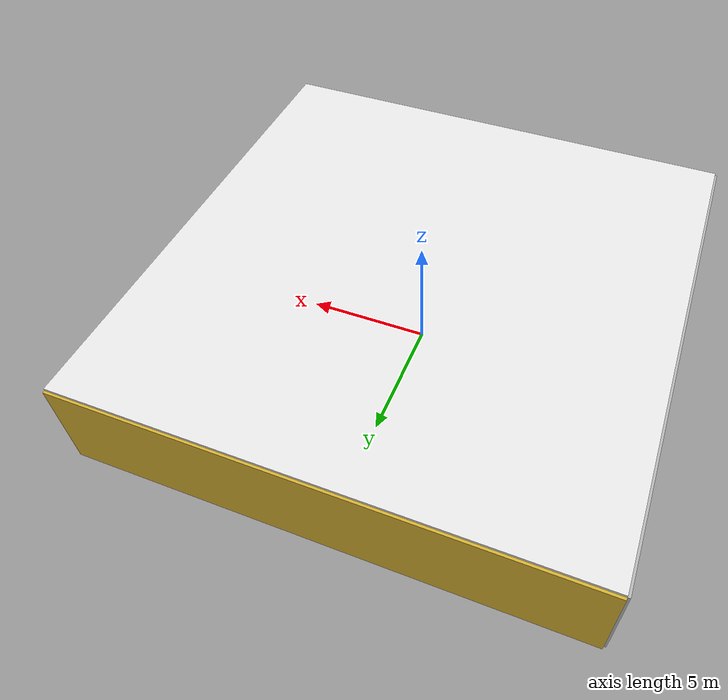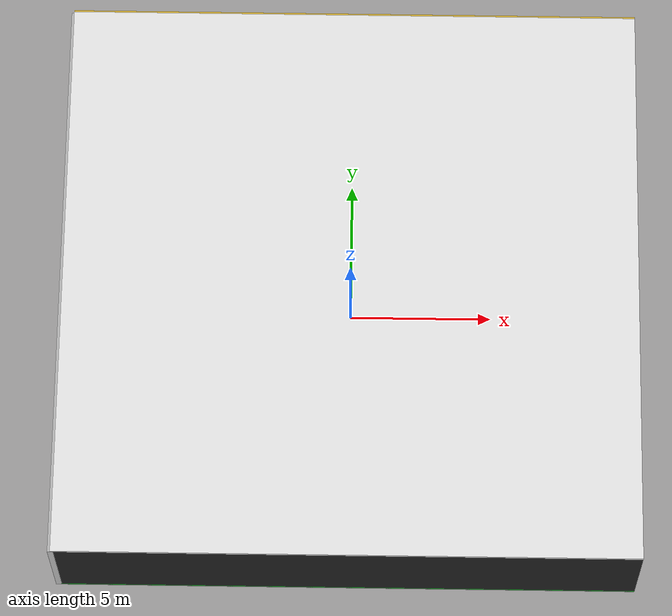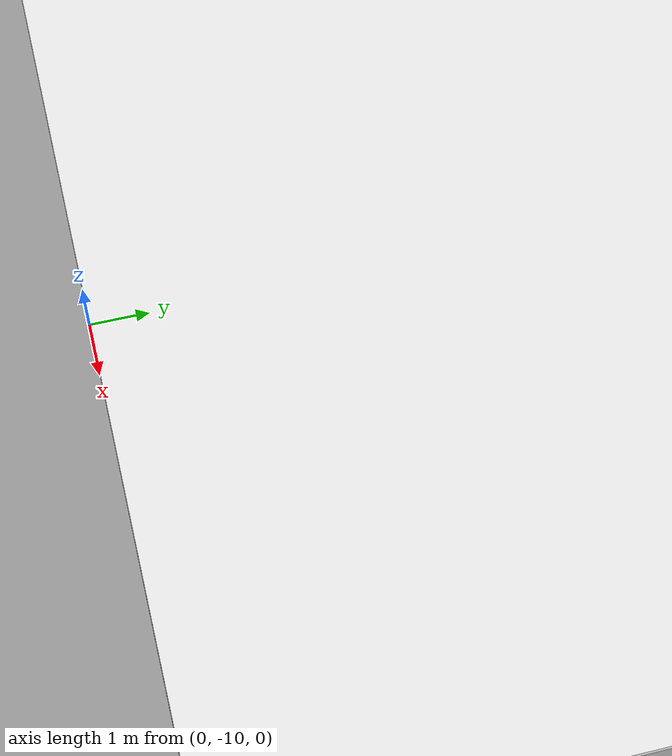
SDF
<sdf version="1.4">
 <world name="default">
  <physics type="ode">
   <max_step_size>0.001</max_step_size>
   <real_time_factor>1</real_time_factor>
   <real_time_update_rate>1000</real_time_update_rate>
   <gravity>0 0 -9.8</gravity>
  </physics>
  <scene><ambient>0.4 0.4 0.4 1</ambient><background>0.7 0.7 0.7 1</background><shadows>1</shadows></scene>
  <model name="Surrounding">
   <static>1</static>
   <link name="Ceiling">
    <collision name="Ceiling_Collision"><geometry><box><size>20 20 0.1</size></box></geometry></collision>
    <visual name="Ceiling_Visual">
     <geometry><box><size>20 20 0.1</size></box></geometry>
     <material>
      <script><uri>file://media/materials/scripts/gazebo.material</uri><name>Gazebo/White</name></script>
     </material>
    </visual>
    <pose>0 0 4.05 0 0 0</pose>
   </link>
   <link name="Wall_South">
    <collision name="Wall_South_Collision">
     <geometry><box><size>20 0 4</size></box></geometry>
     <pose>0 0 2 0 -0 0</pose>
    </collision>
    <visual name="Wall_South_Visual">
     <pose>0 0 2 0 -0 0</pose>
     <geometry><box><size>20 0 4</size></box></geometry>
     <material>
      <script><uri>file://media/materials/scripts/gazebo.material</uri><name>Gazebo/FlatBlack</name></script>
     </material>
    </visual>
    <velocity_decay><linear>0</linear><angular>0</angular></velocity_decay>
    <pose>0 -10 0 0 -0 0</pose>
   </link>
   <link name="Wall_East">
    <collision name="Wall_21_Collision">
     <geometry><box><size>20 0 4</size></box></geometry>
     <pose>0 0 2 0 -0 0</pose>
    </collision>
    <visual name="Wall_21_Visual">
     <pose>0 0 2 0 -0 0</pose>
     <geometry><box><size>20 0 4</size></box></geometry>
     <material>
      <script><uri>file://media/materials/scripts/gazebo.material</uri><name>Gazebo/PioneerBody</name></script>
     </material>
    </visual>
    <velocity_decay><linear>0</linear><angular>0</angular></velocity_decay>
    <pose>10 0 0 0 -0 1.5708</pose>
   </link>
   <link name="Wall_North">
    <collision name="Wall_22_Collision">
     <geometry><box><size>20 0.2 4</size></box></geometry>
     <pose>0 0 2 0 -0 0</pose>
    </collision>
    <visual name="Wall_22_Visual">
     <pose>0 0 2 0 -0 0</pose>
     <geometry><box><size>20 0.2 4</size></box></geometry>
     <material>
      <script><uri>file://media/materials/scripts/gazebo.material</uri><name>Gazebo/Gold</name></script>
     </material>
    </visual>
    <velocity_decay><linear>0</linear><angular>0</angular></velocity_decay>
    <pose>0 10 0 0 -0 0</pose>
   </link>
   <link name="Wall_West">
    <collision name="Wall_23_Collision">
     <geometry><box><size>20 0.2 4</size></box></geometry>
     <pose>0 0 2 0 -0 0</pose>
    </collision>
    <visual name="Wall_23_Visual">
     <pose>0 0 2 0 -0 0</pose>
     <geometry><box><size>20 0.2 4</size></box></geometry>
     <material>
      <script><uri>file://media/materials/scripts/gazebo.material</uri><name>Gazebo/LightOn</name></script>
     </material>
    </visual>
    <velocity_decay><linear>0</linear><angular>0</angular></velocity_decay>
    <pose>-10 0 0 0 0 -1.5708</pose>
   </link>
   <link name="Ground_link">
    <collision name="collision">
     <pose>0 0 .05 0 -0 0</pose>
     <geometry><box><size>20 20 0.1</size></box></geometry>
    </collision>
    <visual name="visual">
     <pose>0 0 .05 0 -0 0</pose>
     <geometry><box><size>20 20 0.1</size></box></geometry>
     <material>
      <script><uri>file://media/materials/scripts/gazebo.material</uri><name>Gazebo/GreenGlow</name></script>
     </material>
    </visual>
   </link>
   <static>1</static>
  </model>
  <spherical_coordinates>
   <surface_model>EARTH_WGS84</surface_model>
   <latitude_deg>0</latitude_deg>
   <longitude_deg>0</longitude_deg>
   <elevation>0</elevation>
   <heading_deg>0</heading_deg>
  </spherical_coordinates>
  <light name="lightball_0" type="diffuse">
   <diffuse>0.8 0.8 0.8 1</diffuse>
   <specular>0.2 0.2 0.2 1</specular>
   <attenuation>
    <range>100</range>
    <constant>0.7</constant>
    <linear>0.01</linear>
    <quadratic>0.001</quadratic>
   </attenuation>
   <direction>-0.5 0.1 -0.9</direction>
   <pose>6.93713774099 -2.92310310165 1.42432142524 0 0 0</pose>
  </light>
  <light name="lightball_1" type="diffuse">
   <diffuse>0.8 0.8 0.8 1</diffuse>
   <specular>0.2 0.2 0.2 1</specular>
   <attenuation>
    <range>100</range>
    <constant>0.7</constant>
    <linear>0.01</linear>
    <quadratic>0.001</quadratic>
   </attenuation>
   <direction>-0.5 0.1 -0.9</direction>
   <pose>-4.14639963878 -8.95919286283 2.47733915065 0 0 0</pose>
  </light>
  <light name="lightball_2" type="diffuse">
   <diffuse>0.8 0.8 0.8 1</diffuse>
   <specular>0.2 0.2 0.2 1</specular>
   <attenuation>
    <range>100</range>
    <constant>0.7</constant>
    <linear>0.01</linear>
    <quadratic>0.001</quadratic>
   </attenuation>
   <direction>-0.5 0.1 -0.9</direction>
   <pose>-4.35320800478 5.13961740501 1.1665020002 0 0 0</pose>
  </light>
  <light name="lightball_3" type="diffuse">
   <diffuse>0.8 0.8 0.8 1</diffuse>
   <specular>0.2 0.2 0.2 1</specular>
   <attenuation>
    <range>100</range>
    <constant>0.7</constant>
    <linear>0.01</linear>
    <quadratic>0.001</quadratic>
   </attenuation>
   <direction>-0.5 0.1 -0.9</direction>
   <pose>6.91469475467 -9.71988921965 0.668382478126 0 0 0</pose>
  </light>
  <light name="lightball_4" type="diffuse">
   <diffuse>0.8 0.8 0.8 1</diffuse>
   <specular>0.2 0.2 0.2 1</specular>
   <attenuation>
    <range>100</range>
    <constant>0.7</constant>
    <linear>0.01</linear>
    <quadratic>0.001</quadratic>
   </attenuation>
   <direction>-0.5 0.1 -0.9</direction>
   <pose>-4.84986131477 -0.95874085793 3.20703356859 0 0 0</pose>
  </light>
  <light name="lightball_5" type="diffuse">
   <diffuse>0.8 0.8 0.8 1</diffuse>
   <specular>0.2 0.2 0.2 1</specular>
   <attenuation>
    <range>100</range>
    <constant>0.7</constant>
    <linear>0.01</linear>
    <quadratic>0.001</quadratic>
   </attenuation>
   <direction>-0.5 0.1 -0.9</direction>
   <pose>-3.99028662332 -2.45471700898 1.30445103543 0 0 0</pose>
  </light>
  <light name="lightball_6" type="diffuse">
   <diffuse>0.8 0.8 0.8 1</diffuse>
   <specular>0.2 0.2 0.2 1</specular>
   <attenuation>
    <range>100</range>
    <constant>0.7</constant>
    <linear>0.01</linear>
    <quadratic>0.001</quadratic>
   </attenuation>
   <direction>-0.5 0.1 -0.9</direction>
   <pose>-3.33858217087 9.37364745273 2.07841493323 0 0 0</pose>
  </light>
  <light name="lightball_7" type="diffuse">
   <diffuse>0.8 0.8 0.8 1</diffuse>
   <specular>0.2 0.2 0.2 1</specular>
   <attenuation>
    <range>100</range>
    <constant>0.7</constant>
    <linear>0.01</linear>
    <quadratic>0.001</quadratic>
   </attenuation>
   <direction>-0.5 0.1 -0.9</direction>
   <pose>0.478965905855 -3.93620249602 2.95851576294 0 0 0</pose>
  </light>
  <light name="lightball_8" type="diffuse">
   <diffuse>0.8 0.8 0.8 1</diffuse>
   <specular>0.2 0.2 0.2 1</specular>
   <attenuation>
    <range>100</range>
    <constant>0.7</constant>
    <linear>0.01</linear>
    <quadratic>0.001</quadratic>
   </attenuation>
   <direction>-0.5 0.1 -0.9</direction>
   <pose>-4.00829998848 -3.51077323315 0.768834821805 0 0 0</pose>
  </light>
  <light name="lightball_9" type="diffuse">
   <diffuse>0.8 0.8 0.8 1</diffuse>
   <specular>0.2 0.2 0.2 1</specular>
   <attenuation>
    <range>100</range>
    <constant>0.7</constant>
    <linear>0.01</linear>
    <quadratic>0.001</quadratic>
   </attenuation>
   <direction>-0.5 0.1 -0.9</direction>
   <pose>-8.24573985573 7.55505932117 2.36967069373 0 0 0</pose>
  </light>
  <include><uri>model://cabinet</uri><pose>-4.32996382319 -4.67745365724 0 0 0 0.953042011217</pose></include>
  <include><uri>model://cabinet</uri><pose>-2.03911074431 -5.18293701643 0 0 0 1.93102141374</pose></include>
  <include><uri>model://cabinet</uri><pose>-1.96553877666 6.84716530179 0 0 0 2.59957512292</pose></include>
  <include>
   <uri>model://robocup_3Dsim_goal</uri>
   <pose>2.03679228014 -8.21417665394 0 0 0 1.22024767393</pose>
  </include>
  <include><uri>model://table</uri><pose>4.68929488115 1.42337311926 0 0 0 1.49214464587</pose></include>
 </world>
</sdf>

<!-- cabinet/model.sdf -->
<sdf version="1.5">
  <model name="cabinet">
    <static>true</static>
    <link name="cabinet_bottom_plate">
      <inertial>
        <pose>0 0 -1 0 0 0</pose>
        <inertia>
          <ixx>2.050000</ixx>
          <ixy>0</ixy>
          <ixz>0</ixz>
          <iyy>2.050000</iyy>
          <iyz>0</iyz>
          <izz>2.050000</izz>
        </inertia>
        <mass>25.000000</mass>
      </inertial>
      <collision name="cabinet_bottom_plate_geom">
        <pose>0 0 0.010000 0 0 0</pose>
        <geometry>
          <box>
            <size>0.450000 0.450000 0.020000</size>
          </box>
        </geometry>
      </collision>
      <visual name="cabinet_bottom_plate_geom_visual">
        <pose>0 0 0.010000 0 0 0</pose>
        <geometry>
          <box>
            <size>0.450000 0.450000 0.020000</size>
          </box>
        </geometry>
        <material>
          <script>
            <uri>model://media/materials/scripts/gazebo.material</uri>
            <name>Gazebo/Wood</name>
          </script>
        </material>
      </visual>
      <collision name="cabinet_bottom_plate_geom_cabinet_back_plate">
        <pose>0.235000 0 0.510000 0 0 0</pose>
        <geometry>
          <box>
            <size>0.020000 0.450000 1.020000</size>
          </box>
        </geometry>
      </collision>
      <visual name="cabinet_bottom_plate_geom_cabinet_back_plate_visual">
        <pose>0.235000 0 0.510000 0 0 0</pose>
        <geometry>
          <box>
            <size>0.020000 0.450000 1.020000</size>
          </box>
        </geometry>
        <material>
          <script>
            <uri>model://media/materials/scripts/gazebo.material</uri>
            <name>Gazebo/Wood</name>
          </script>
        </material>
      </visual>
      <collision name="cabinet_bottom_plate_geom_cabinet_left_plate">
        <pose>0 0.235000 0.510000 0 0 0</pose>
        <geometry>
          <box>
            <size>0.450000 0.020000 1.020000</size>
          </box>
        </geometry>
      </collision>
      <visual name="cabinet_bottom_plate_geom_cabinet_left_plate_visual">
        <pose>0 0.235000 0.510000 0 0 0</pose>
        <geometry>
          <box>
            <size>0.450000 0.020000 1.020000</size>
          </box>
        </geometry>
        <material>
          <script>
            <uri>model://media/materials/scripts/gazebo.material</uri>
            <name>Gazebo/Wood</name>
          </script>
        </material>
      </visual>
      <collision name="cabinet_bottom_plate_geom_cabinet_middle_plate">
        <pose>0 0 0.510000 0 0 0</pose>
        <geometry>
          <box>
            <size>0.450000 0.450000 0.020000</size>
          </box>
        </geometry>
      </collision>
      <visual name="cabinet_bottom_plate_geom_cabinet_middle_plate_visual">
        <pose>0 0 0.510000 0 0 0</pose>
        <geometry>
          <box>
            <size>0.450000 0.450000 0.020000</size>
          </box>
        </geometry>
        <material>
          <script>
            <uri>model://media/materials/scripts/gazebo.material</uri>
            <name>Gazebo/Wood</name>
          </script>
        </material>
      </visual>
      <collision name="cabinet_bottom_plate_geom_cabinet_right_plate">
        <pose>0 -0.235000 0.510000 0 0 0</pose>
        <geometry>
          <box>
            <size>0.450000 0.020000 1.020000</size>
          </box>
        </geometry>
      </collision>
      <visual name="cabinet_bottom_plate_geom_cabinet_right_plate_visual">
        <pose>0 -0.235000 0.510000 0 0 0</pose>
        <geometry>
          <box>
            <size>0.450000 0.020000 1.020000</size>
          </box>
        </geometry>
        <material>
          <script>
            <uri>model://media/materials/scripts/gazebo.material</uri>
            <name>Gazebo/Wood</name>
          </script>
        </material>
      </visual>
      <collision name="cabinet_bottom_plate_geom_cabinet_top_plate">
        <pose>0 0 1.010000 0 0 0</pose>
        <geometry>
          <box>
            <size>0.450000 0.450000 0.020000</size>
          </box>
        </geometry>
      </collision>
      <visual name="cabinet_bottom_plate_geom_cabinet_top_plate_visual">
        <pose>0 0 1.010000 0 0 0</pose>
        <geometry>
          <box>
            <size>0.450000 0.450000 0.020000</size>
          </box>
        </geometry>
        <material>
          <script>
            <uri>model://media/materials/scripts/gazebo.material</uri>
            <name>Gazebo/Wood</name>
          </script>
        </material>
      </visual>
    </link>
  </model>
</sdf>

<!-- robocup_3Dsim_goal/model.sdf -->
<sdf version="1.5">
  <model name="robocup_3d_goal">
    <static>true</static>
    <link name="left_post">
      <pose>0 1.05 0.45 0 0 0</pose>
      <collision name="collision">
        <geometry>
          <cylinder>
            <radius>0.05</radius>
            <length>0.9</length>
          </cylinder>
        </geometry>
      </collision>
      <visual name="visual">
        <geometry>
          <cylinder>
            <radius>0.05</radius>
            <length>0.9</length>
          </cylinder>
        </geometry>
        <material>
          <script>
            <uri>file://media/materials/scripts/gazebo.material</uri>
            <name>Gazebo/ZincYellow</name>
          </script>
        </material>
      </visual>
    </link>
    <link name="left_support_horiz_lower">
      <pose>0.30 1.05 0.01 0 0 0</pose>
      <collision name="collision">
        <geometry>
          <box>
            <size>0.50 0.02 0.02</size>
          </box>
        </geometry>
      </collision>
      <visual name="visual">
        <geometry>
          <box>
            <size>0.50 0.02 0.02</size>
          </box>
        </geometry>
        <material>
          <script>
            <uri>file://media/materials/scripts/gazebo.material</uri>
            <name>Gazebo/White</name>
          </script>
        </material>
      </visual>
    </link>
    <link name="left_support_horiz_upper">
      <pose>0.30 1.05 0.79 0 0 0</pose>
      <collision name="collision">
        <geometry>
          <box>
            <size>0.50 0.02 0.02</size>
          </box>
        </geometry>
      </collision>
      <visual name="visual">
        <geometry>
          <box>
            <size>0.50 0.02 0.02</size>
          </box>
        </geometry>
        <material>
          <script>
            <uri>file://media/materials/scripts/gazebo.material</uri>
            <name>Gazebo/White</name>
          </script>
        </material>
      </visual>
    </link>
    <link name="left_support_vertical">
      <pose>0.56 1.05 0.4 0 1.5708 0</pose>
      <collision name="collision">
        <geometry>
          <box>
            <size>0.80 0.02 0.02</size>
          </box>
        </geometry>
      </collision>
      <visual name="visual">
        <geometry>
          <box>
            <size>0.80 0.02 0.02</size>
          </box>
        </geometry>
        <material>
          <script>
            <uri>file://media/materials/scripts/gazebo.material</uri>
            <name>Gazebo/White</name>
          </script>
        </material>
      </visual>
    </link>
    <link name="right_support_horiz_lower">
      <pose>0.30 -1.05 0.01 0 0 0</pose>
      <collision name="collision">
        <geometry>
          <box>
            <size>0.50 0.02 0.02</size>
          </box>
        </geometry>
      </collision>
      <visual name="visual">
        <geometry>
          <box>
            <size>0.50 0.02 0.02</size>
          </box>
        </geometry>
        <material>
          <script>
            <uri>file://media/materials/scripts/gazebo.material</uri>
            <name>Gazebo/White</name>
          </script>
        </material>
      </visual>
    </link>
    <link name="right_support_horiz_upper">
      <pose>0.30 -1.05 0.79 0 0 0</pose>
      <collision name="collision">
        <geometry>
          <box>
            <size>0.50 0.02 0.02</size>
          </box>
        </geometry>
      </collision>
      <visual name="visual">
        <geometry>
          <box>
            <size>0.50 0.02 0.02</size>
          </box>
        </geometry>
        <material>
          <script>
            <uri>file://media/materials/scripts/gazebo.material</uri>
            <name>Gazebo/White</name>
          </script>
        </material>
      </visual>
    </link>
    <link name="right_support_vertical">
      <pose>0.56 -1.05 0.4 0 1.5708 0</pose>
      <collision name="collision">
        <geometry>
          <box>
            <size>0.80 0.02 0.02</size>
          </box>
        </geometry>
      </collision>
      <visual name="visual">
        <geometry>
          <box>
            <size>0.80 0.02 0.02</size>
          </box>
        </geometry>
        <material>
          <script>
            <uri>file://media/materials/scripts/gazebo.material</uri>
            <name>Gazebo/White</name>
          </script>
        </material>
      </visual>
    </link>
    <link name="center_support_horiz_lower">
      <pose>0.56 0 0.01 0 1.5708 0</pose>
      <collision name="collision">
        <geometry>
          <box>
            <size>0.02 2.08 0.02</size>
          </box>
        </geometry>
      </collision>
      <visual name="visual">
        <geometry>
          <box>
            <size>0.02 2.08 0.02</size>
          </box>
        </geometry>
        <material>
          <script>
            <uri>file://media/materials/scripts/gazebo.material</uri>
            <name>Gazebo/White</name>
          </script>
        </material>
      </visual>
    </link>
    <link name="center_support_horiz_upper">
      <pose>0.56 0 0.79 0 1.5708 0</pose>
      <collision name="collision">
        <geometry>
          <box>
            <size>0.02 2.08 0.02</size>
          </box>
        </geometry>
      </collision>
      <visual name="visual">
        <geometry>
          <box>
            <size>0.02 2.08 0.02</size>
          </box>
        </geometry>
        <material>
          <script>
            <uri>file://media/materials/scripts/gazebo.material</uri>
            <name>Gazebo/White</name>
          </script>
        </material>
      </visual>
    </link>
    <link name="right_post">
      <pose>0 -1.05 0.45 0 0 0</pose>
      <collision name="collision">
        <geometry>
          <cylinder>
            <radius>0.05</radius>
            <length>0.9</length>
          </cylinder>
        </geometry>
      </collision>
      <visual name="visual">
        <geometry>
          <cylinder>
            <radius>0.05</radius>
            <length>0.9</length>
          </cylinder>
        </geometry>
        <material>
          <script>
            <uri>file://media/materials/scripts/gazebo.material</uri>
            <name>Gazebo/ZincYellow</name>
          </script>
        </material>
      </visual>
    </link>
    <link name="crossbar">
      <pose>0 0 0.85 1.57 1.57 0</pose>
      <collision name="collision">
        <geometry>
          <cylinder>
            <radius>0.05</radius>
            <length>2.0</length>
          </cylinder>
        </geometry>
      </collision>
      <visual name="visual">
        <geometry>
          <cylinder>
            <radius>0.05</radius>
            <length>2.0</length>
          </cylinder>
        </geometry>
        <material>
          <script>
            <uri>file://media/materials/scripts/gazebo.material</uri>
            <name>Gazebo/ZincYellow</name>
          </script>
        </material>
      </visual>
    </link>
    <link name="center_net">
      <pose>0.56 0 0.40 0 0 0</pose>
      <collision name="collision">
        <geometry>
          <box>
            <size>0.01 2.1 0.80</size>
          </box>
        </geometry>
      </collision>
      <visual name="visual">
        <geometry>
          <box>
            <size>0.01 2.1 0.80</size>
          </box>
        </geometry>
        <material>
          <script>
            <uri>model://../model_source/models/robocup09_spl_field/materials/scripts/</uri>
            <uri>model://../model_source/models/robocup09_spl_field/materials/textures/</uri>
            <name>RoboCup/Net</name>
          </script>
        </material>
      </visual>
    </link>
    <link name="left_net">
      <pose>0.30 1.05 0.40 0 0 0</pose>
      <collision name="collision">
        <geometry>
          <box>
            <size>0.50 0.01 0.76</size>
          </box>
        </geometry>
      </collision>
      <visual name="visual">
        <geometry>
          <box>
            <size>0.50 0.01 0.76</size>
          </box>
        </geometry>
        <material>
          <script>
            <uri>model://../model_source/models/robocup09_spl_field/materials/scripts/</uri>
            <uri>model://../model_source/models/robocup09_spl_field/materials/textures/</uri>
            <name>RoboCup/Net</name>
          </script>
        </material>
      </visual>
    </link>
    <link name="right_net">
      <pose>0.30 -1.05 0.40 0 0 0</pose>
      <collision name="collision">
        <geometry>
          <box>
            <size>0.50 0.01 0.76</size>
          </box>
        </geometry>
      </collision>
      <visual name="visual">
        <geometry>
          <box>
            <size>0.50 0.01 0.76</size>
          </box>
        </geometry>
        <material>
          <script>
            <uri>model://../model_source/models/robocup09_spl_field/materials/scripts/</uri>
            <uri>model://../model_source/models/robocup09_spl_field/materials/textures/</uri>
            <name>RoboCup/Net</name>
          </script>
        </material>
      </visual>
    </link>
  </model>
</sdf>

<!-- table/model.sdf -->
<sdf version="1.5">
  <model name="table">
    <static>true</static>
    <link name="link">
      <collision name="surface">
        <pose>0 0 1.0 0 0 0</pose>
        <geometry>
          <box>
            <size>1.5 0.8 0.03</size>
          </box>
        </geometry>
        <surface>
          <friction>
            <ode>
              <mu>0.6</mu>
              <mu2>0.6</mu2>
            </ode>
          </friction>
        </surface>
      </collision>
      <visual name="visual1">
        <pose>0 0 1.0 0 0 0</pose>
        <geometry>
          <box>
            <size>1.5 0.8 0.03</size>
          </box>
        </geometry>
        <material>
          <script>
            <uri>model://media/materials/scripts/gazebo.material</uri>
            <name>Gazebo/Wood</name>
          </script>
        </material>
      </visual>
      <collision name="front_left_leg">
        <pose>0.68 0.38 0.5 0 0 0</pose>
        <geometry>
          <cylinder>
            <radius>0.02</radius>
            <length>1.0</length>
          </cylinder>
        </geometry>
      </collision>
      <visual name="front_left_leg">
        <pose>0.68 0.38 0.5 0 0 0</pose>
        <geometry>
          <cylinder>
            <radius>0.02</radius>
            <length>1.0</length>
          </cylinder>
        </geometry>
        <material>
          <script>
            <uri>model://media/materials/scripts/gazebo.material</uri>
            <name>Gazebo/Grey</name>
          </script>
        </material>
      </visual>
      <collision name="front_right_leg">
        <pose>0.68 -0.38 0.5 0 0 0</pose>
        <geometry>
          <cylinder>
            <radius>0.02</radius>
            <length>1.0</length>
          </cylinder>
        </geometry>
      </collision>
      <visual name="front_right_leg">
        <pose>0.68 -0.38 0.5 0 0 0</pose>
        <geometry>
          <cylinder>
            <radius>0.02</radius>
            <length>1.0</length>
          </cylinder>
        </geometry>
        <material>
          <script>
            <uri>model://media/materials/scripts/gazebo.material</uri>
            <name>Gazebo/Grey</name>
          </script>
        </material>
      </visual>
      <collision name="back_right_leg">
        <pose>-0.68 -0.38 0.5 0 0 0</pose>
        <geometry>
          <cylinder>
            <radius>0.02</radius>
            <length>1.0</length>
          </cylinder>
        </geometry>
      </collision>
      <visual name="back_right_leg">
        <pose>-0.68 -0.38 0.5 0 0 0</pose>
        <geometry>
          <cylinder>
            <radius>0.02</radius>
            <length>1.0</length>
          </cylinder>
        </geometry>
        <material>
          <script>
            <uri>model://media/materials/scripts/gazebo.material</uri>
            <name>Gazebo/Grey</name>
          </script>
        </material>
      </visual>
      <collision name="back_left_leg">
        <pose>-0.68 0.38 0.5 0 0 0</pose>
        <geometry>
          <cylinder>
            <radius>0.02</radius>
            <length>1.0</length>
          </cylinder>
        </geometry>
      </collision>
      <visual name="back_left_leg">
        <pose>-0.68 0.38 0.5 0 0 0</pose>
        <geometry>
          <cylinder>
            <radius>0.02</radius>
            <length>1.0</length>
          </cylinder>
        </geometry>
        <material>
          <script>
            <uri>model://media/materials/scripts/gazebo.material</uri>
            <name>Gazebo/Grey</name>
          </script>
        </material>
      </visual>
    </link>
  </model>
</sdf>
